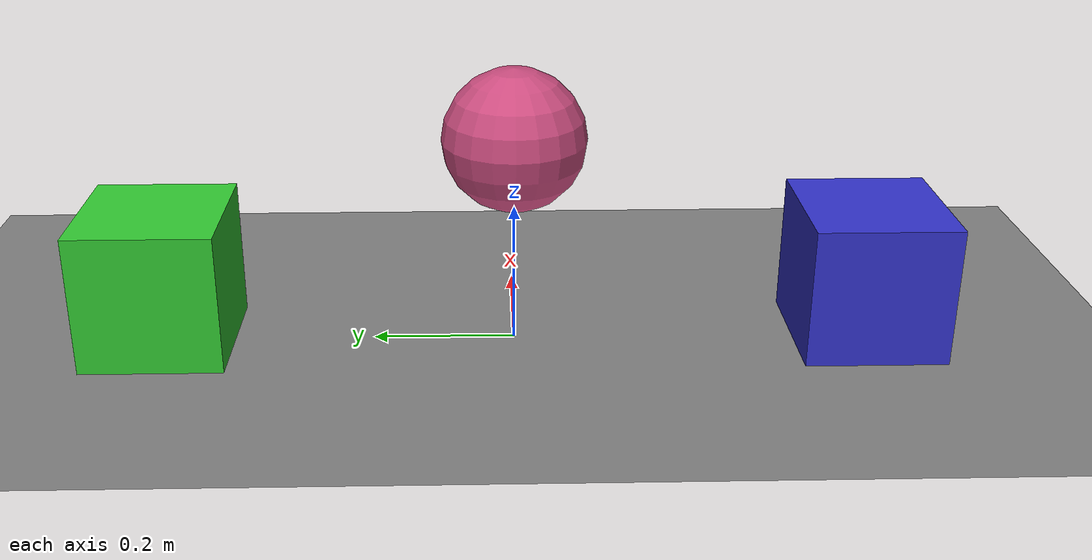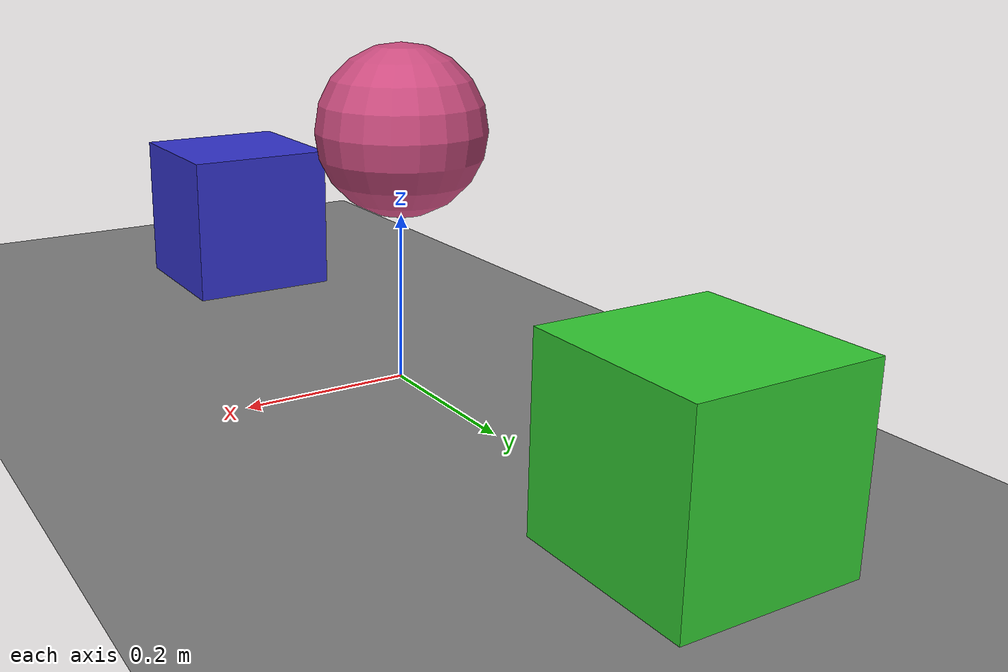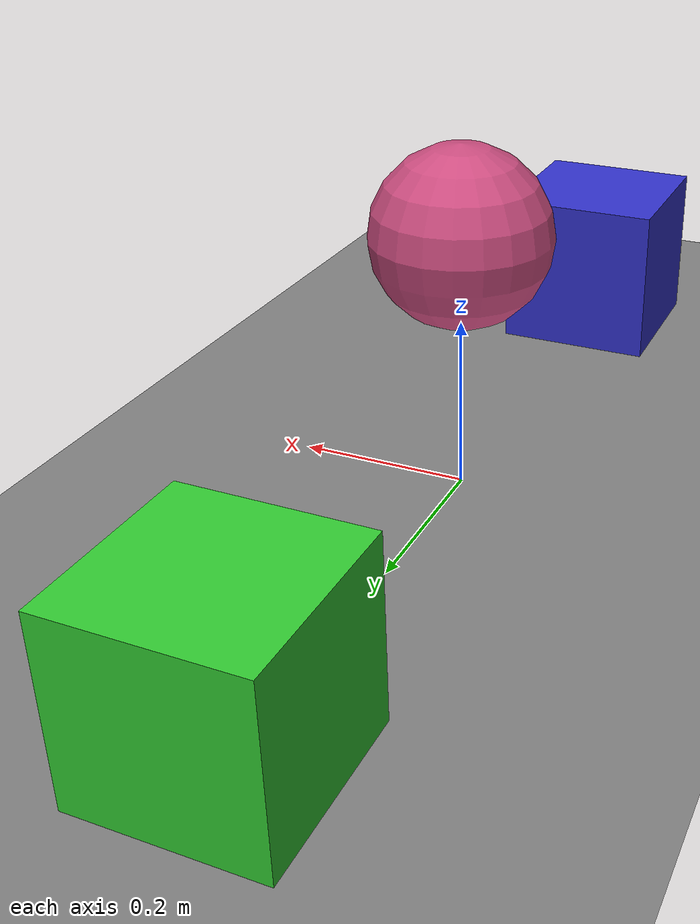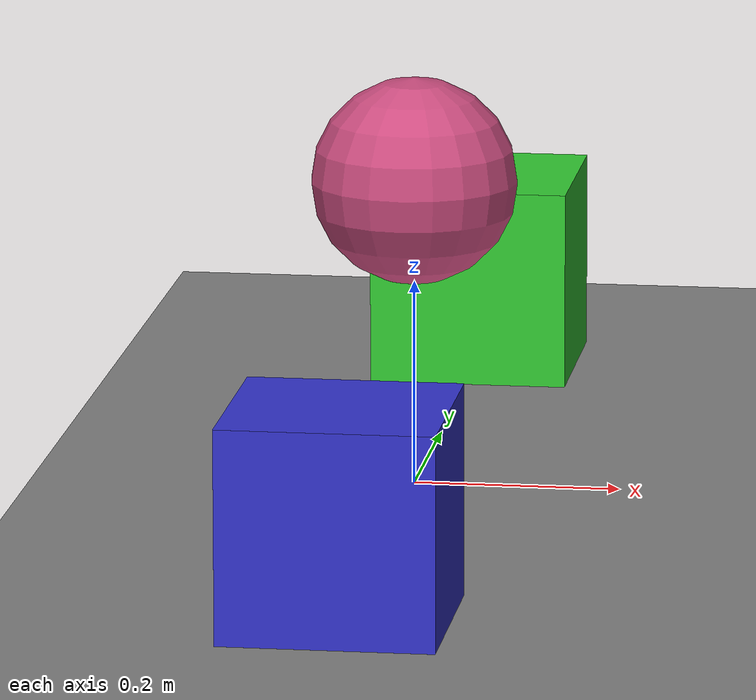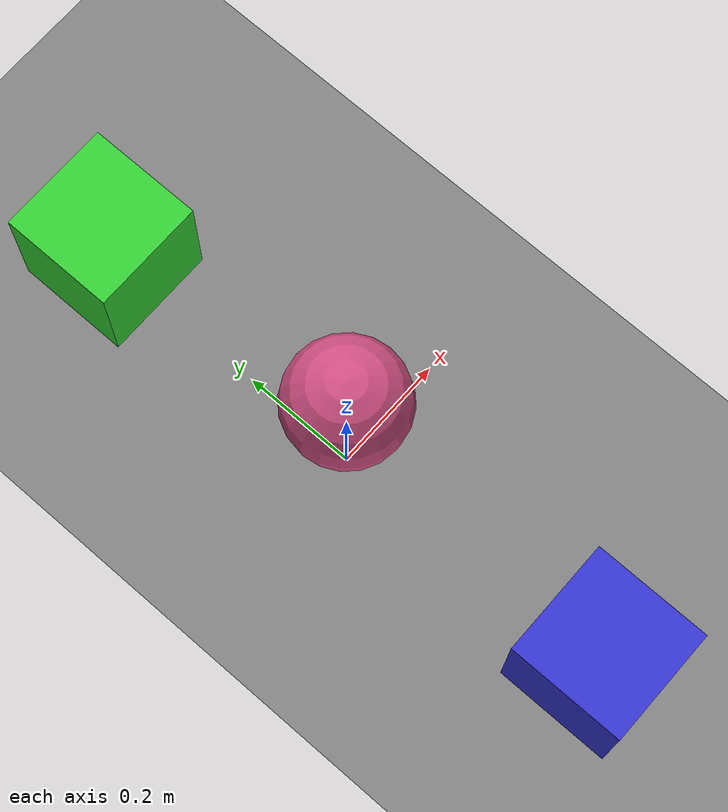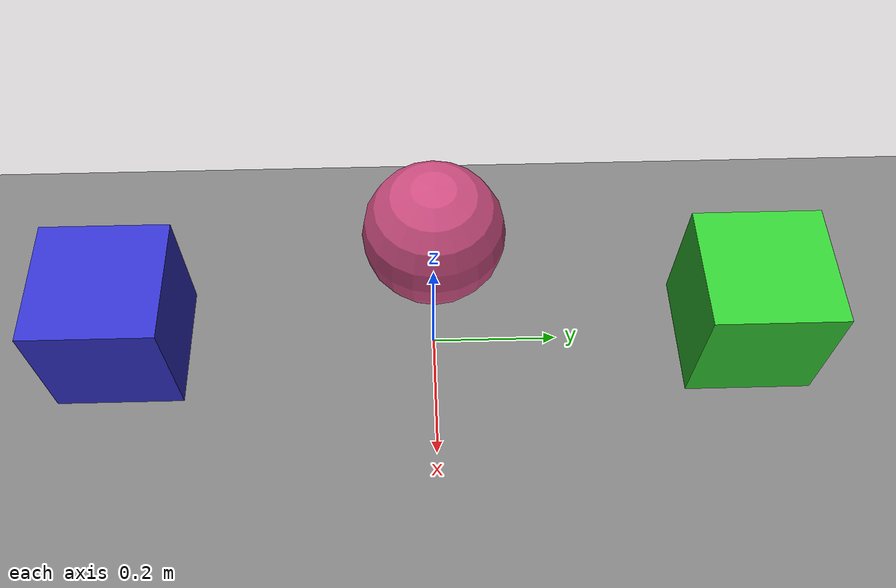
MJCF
<mujoco model="ball_block_actuated">
  <option gravity="0 0 -9.81">
    <flag contact="enable"/>
  </option>

  <worldbody>
    <!-- Ground -->
    <geom name="ground"
          type="plane"
          pos="0 0 0"
          size="1 1 0.01"
          contype="1" conaffinity="1"
          friction="0.8 0.1 0.01"/>

    <!-- Ball in the middle -->
    <body name="ball_body" pos="0 0 0.3">
      <joint name="ball_free" type="free" damping="0.01"/>
      <geom name="ball"
            type="sphere"
            size="0.1"
            density="1000"
            contype="1" conaffinity="1"
            friction="0.4 0.1 0.01"
            rgba="0.8 0.3 0.5 1"/>
    </body>

    <!-- Left "paddle" block that can slide in +y and hit the ball -->
    <body name="block_left" pos="0 -0.5 0.1">
      <!-- Slide joint along y axis -->
      <joint name="block_left_slide"
             type="slide"
             axis="0 1 0"
             range="-0.5 0.5"/>
      <geom name="block_left_geom"
            type="box"
            size="0.1 0.1 0.1"
            contype="1" conaffinity="1"
            friction="0.8 0.1 0.01"
            rgba="0.2 0.2 0.8 1"/>
    </body>

    <!-- Static right block -->
    <body name="block_right" pos="0 0.5 0.1">
      <geom name="block_right_geom"
            type="box"
            size="0.1 0.1 0.1"
            contype="1" conaffinity="1"
            friction="0.8 0.1 0.01"
            rgba="0.2 0.8 0.2 1"/>
    </body>
  </worldbody>

  <actuator>
    <!-- Position controller for the sliding block -->
    <position name="block_left_ctrl"
              joint="block_left_slide"
              kp="2000"
              ctrlrange="-0.5 0.5"/>
  </actuator>
</mujoco>
